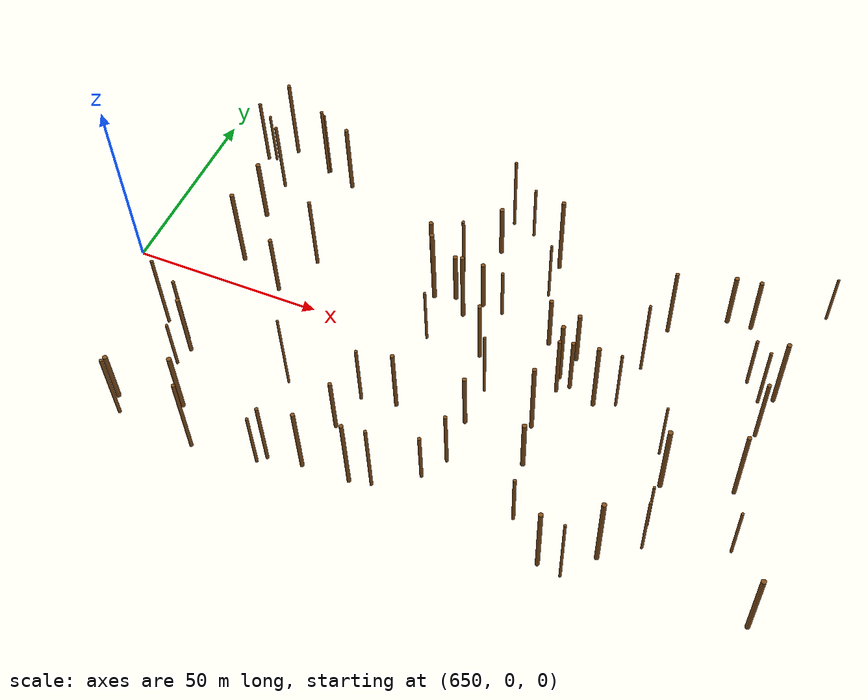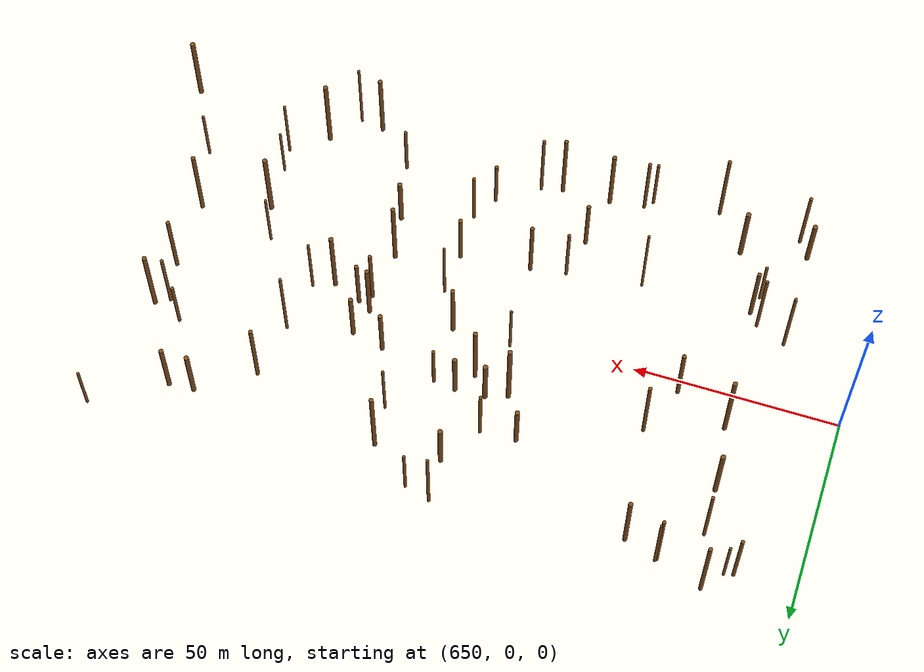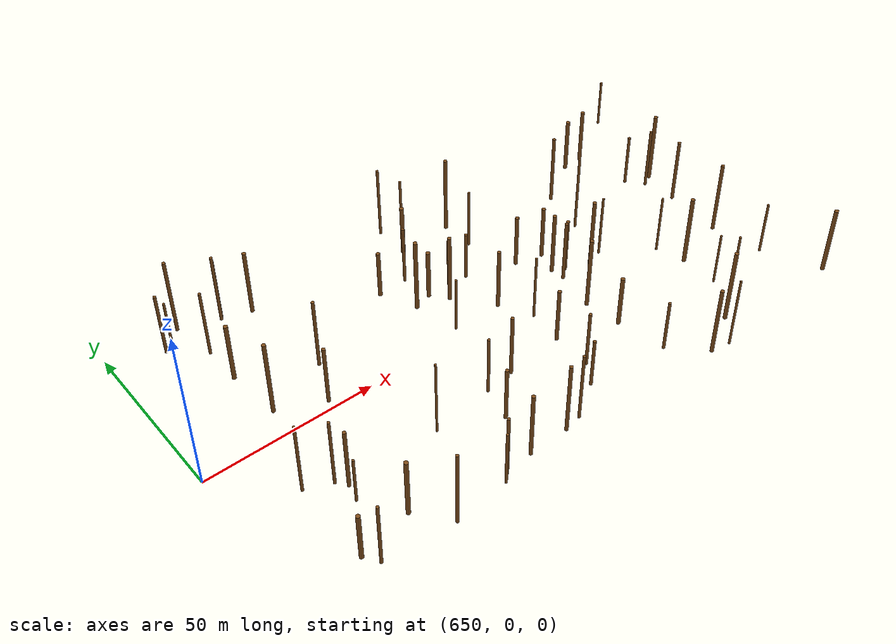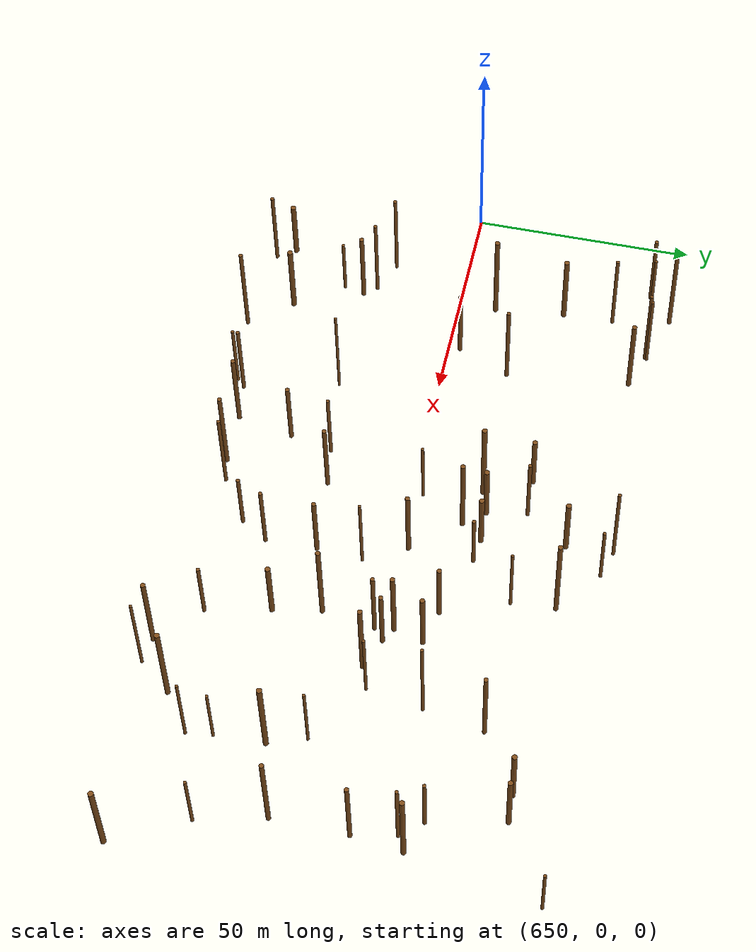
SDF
<sdf version="1.6">
 <world name="simple_forest">
  <include><uri>model://sun</uri></include>
  <model name="tree_1">
   <pose>739.1065020223723 17.669948742291126 7.934694163147081 0 0 0</pose>
   <static>true</static>
   <link name="trunk">
    <collision name="collision">
     <geometry>
      <cylinder><radius>0.5676538703114535</radius><length>15.869388326294162</length></cylinder>
     </geometry>
    </collision>
    <visual name="visual">
     <geometry>
      <cylinder><radius>0.5676538703114535</radius><length>15.869388326294162</length></cylinder>
     </geometry>
     <material><ambient>0.5 0.3 0.1 1</ambient><diffuse>0.5 0.3 0.1 1</diffuse></material>
    </visual>
   </link>
  </model>
  <model name="tree_5">
   <pose>807.7610593144798 19.81393949882269 8.277397499058909 0 0 0</pose>
   <static>true</static>
   <link name="trunk">
    <collision name="collision">
     <geometry>
      <cylinder><radius>0.40207515495539753</radius><length>16.554794998117817</length></cylinder>
     </geometry>
    </collision>
    <visual name="visual">
     <geometry>
      <cylinder><radius>0.40207515495539753</radius><length>16.554794998117817</length></cylinder>
     </geometry>
     <material><ambient>0.5 0.3 0.1 1</ambient><diffuse>0.5 0.3 0.1 1</diffuse></material>
    </visual>
   </link>
  </model>
  <model name="tree_10">
   <pose>707.5261178527743 -45.41756163443378 8.946939818010536 0 0 0</pose>
   <static>true</static>
   <link name="trunk">
    <collision name="collision">
     <geometry>
      <cylinder><radius>0.36836948269546405</radius><length>17.893879636021072</length></cylinder>
     </geometry>
    </collision>
    <visual name="visual">
     <geometry>
      <cylinder><radius>0.36836948269546405</radius><length>17.893879636021072</length></cylinder>
     </geometry>
     <material><ambient>0.5 0.3 0.1 1</ambient><diffuse>0.5 0.3 0.1 1</diffuse></material>
    </visual>
   </link>
  </model>
  <model name="tree_23">
   <pose>794.1585707193344 -7.784003320031594 9.408096432532684 0 0 0</pose>
   <static>true</static>
   <link name="trunk">
    <collision name="collision">
     <geometry>
      <cylinder><radius>0.31905831184558714</radius><length>18.816192865065368</length></cylinder>
     </geometry>
    </collision>
    <visual name="visual">
     <geometry>
      <cylinder><radius>0.31905831184558714</radius><length>18.816192865065368</length></cylinder>
     </geometry>
     <material><ambient>0.5 0.3 0.1 1</ambient><diffuse>0.5 0.3 0.1 1</diffuse></material>
    </visual>
   </link>
  </model>
  <model name="tree_30">
   <pose>764.8856920743998 3.9379030119625753 10.151768360975888 0 0 0</pose>
   <static>true</static>
   <link name="trunk">
    <collision name="collision">
     <geometry>
      <cylinder><radius>0.5335879435891675</radius><length>20.303536721951776</length></cylinder>
     </geometry>
    </collision>
    <visual name="visual">
     <geometry>
      <cylinder><radius>0.5335879435891675</radius><length>20.303536721951776</length></cylinder>
     </geometry>
     <material><ambient>0.5 0.3 0.1 1</ambient><diffuse>0.5 0.3 0.1 1</diffuse></material>
    </visual>
   </link>
  </model>
  <model name="tree_45">
   <pose>731.785090965252 17.336454729330157 7.992089355759794 0 0 0</pose>
   <static>true</static>
   <link name="trunk">
    <collision name="collision">
     <geometry>
      <cylinder><radius>0.5952495634097899</radius><length>15.984178711519588</length></cylinder>
     </geometry>
    </collision>
    <visual name="visual">
     <geometry>
      <cylinder><radius>0.5952495634097899</radius><length>15.984178711519588</length></cylinder>
     </geometry>
     <material><ambient>0.5 0.3 0.1 1</ambient><diffuse>0.5 0.3 0.1 1</diffuse></material>
    </visual>
   </link>
  </model>
  <model name="tree_62">
   <pose>674.9733207303716 -20.000292020123776 11.25932246207201 0 0 0</pose>
   <static>true</static>
   <link name="trunk">
    <collision name="collision">
     <geometry>
      <cylinder><radius>0.3948531588815562</radius><length>22.51864492414402</length></cylinder>
     </geometry>
    </collision>
    <visual name="visual">
     <geometry>
      <cylinder><radius>0.3948531588815562</radius><length>22.51864492414402</length></cylinder>
     </geometry>
     <material><ambient>0.5 0.3 0.1 1</ambient><diffuse>0.5 0.3 0.1 1</diffuse></material>
    </visual>
   </link>
  </model>
  <model name="tree_68">
   <pose>666.7548278164165 43.89300039271039 8.077143352095511 0 0 0</pose>
   <static>true</static>
   <link name="trunk">
    <collision name="collision">
     <geometry>
      <cylinder><radius>0.3402873343180103</radius><length>16.154286704191023</length></cylinder>
     </geometry>
    </collision>
    <visual name="visual">
     <geometry>
      <cylinder><radius>0.3402873343180103</radius><length>16.154286704191023</length></cylinder>
     </geometry>
     <material><ambient>0.5 0.3 0.1 1</ambient><diffuse>0.5 0.3 0.1 1</diffuse></material>
    </visual>
   </link>
  </model>
  <model name="tree_70">
   <pose>720.43606526741 -29.640268767254707 8.819919508152047 0 0 0</pose>
   <static>true</static>
   <link name="trunk">
    <collision name="collision">
     <geometry>
      <cylinder><radius>0.4902713876655239</radius><length>17.639839016304094</length></cylinder>
     </geometry>
    </collision>
    <visual name="visual">
     <geometry>
      <cylinder><radius>0.4902713876655239</radius><length>17.639839016304094</length></cylinder>
     </geometry>
     <material><ambient>0.5 0.3 0.1 1</ambient><diffuse>0.5 0.3 0.1 1</diffuse></material>
    </visual>
   </link>
  </model>
  <model name="tree_77">
   <pose>798.1610818391613 36.07025820009028 8.55038269169877 0 0 0</pose>
   <static>true</static>
   <link name="trunk">
    <collision name="collision">
     <geometry>
      <cylinder><radius>0.5696773909579423</radius><length>17.10076538339754</length></cylinder>
     </geometry>
    </collision>
    <visual name="visual">
     <geometry>
      <cylinder><radius>0.5696773909579423</radius><length>17.10076538339754</length></cylinder>
     </geometry>
     <material><ambient>0.5 0.3 0.1 1</ambient><diffuse>0.5 0.3 0.1 1</diffuse></material>
    </visual>
   </link>
  </model>
  <model name="tree_82">
   <pose>804.2127875477676 36.406402837527935 8.83402854797236 0 0 0</pose>
   <static>true</static>
   <link name="trunk">
    <collision name="collision">
     <geometry>
      <cylinder><radius>0.5432247949723167</radius><length>17.66805709594472</length></cylinder>
     </geometry>
    </collision>
    <visual name="visual">
     <geometry>
      <cylinder><radius>0.5432247949723167</radius><length>17.66805709594472</length></cylinder>
     </geometry>
     <material><ambient>0.5 0.3 0.1 1</ambient><diffuse>0.5 0.3 0.1 1</diffuse></material>
    </visual>
   </link>
  </model>
  <model name="tree_83">
   <pose>789.5007640441164 -39.19043735970429 11.792966256688908 0 0 0</pose>
   <static>true</static>
   <link name="trunk">
    <collision name="collision">
     <geometry>
      <cylinder><radius>0.561650034871827</radius><length>23.585932513377816</length></cylinder>
     </geometry>
    </collision>
    <visual name="visual">
     <geometry>
      <cylinder><radius>0.561650034871827</radius><length>23.585932513377816</length></cylinder>
     </geometry>
     <material><ambient>0.5 0.3 0.1 1</ambient><diffuse>0.5 0.3 0.1 1</diffuse></material>
    </visual>
   </link>
  </model>
  <model name="tree_85">
   <pose>797.3920441613332 -27.240451259222965 8.465648941638543 0 0 0</pose>
   <static>true</static>
   <link name="trunk">
    <collision name="collision">
     <geometry>
      <cylinder><radius>0.30709933041043547</radius><length>16.931297883277086</length></cylinder>
     </geometry>
    </collision>
    <visual name="visual">
     <geometry>
      <cylinder><radius>0.30709933041043547</radius><length>16.931297883277086</length></cylinder>
     </geometry>
     <material><ambient>0.5 0.3 0.1 1</ambient><diffuse>0.5 0.3 0.1 1</diffuse></material>
    </visual>
   </link>
  </model>
  <model name="tree_90">
   <pose>731.2596100461773 -18.632268580500877 10.05711529834739 0 0 0</pose>
   <static>true</static>
   <link name="trunk">
    <collision name="collision">
     <geometry>
      <cylinder><radius>0.48186265599184297</radius><length>20.11423059669478</length></cylinder>
     </geometry>
    </collision>
    <visual name="visual">
     <geometry>
      <cylinder><radius>0.48186265599184297</radius><length>20.11423059669478</length></cylinder>
     </geometry>
     <material><ambient>0.5 0.3 0.1 1</ambient><diffuse>0.5 0.3 0.1 1</diffuse></material>
    </visual>
   </link>
  </model>
  <model name="tree_93">
   <pose>744.5305770610818 17.06285044329995 7.849869055631551 0 0 0</pose>
   <static>true</static>
   <link name="trunk">
    <collision name="collision">
     <geometry>
      <cylinder><radius>0.40926644153437924</radius><length>15.699738111263102</length></cylinder>
     </geometry>
    </collision>
    <visual name="visual">
     <geometry>
      <cylinder><radius>0.40926644153437924</radius><length>15.699738111263102</length></cylinder>
     </geometry>
     <material><ambient>0.5 0.3 0.1 1</ambient><diffuse>0.5 0.3 0.1 1</diffuse></material>
    </visual>
   </link>
  </model>
  <model name="tree_94">
   <pose>667.5953080621596 -16.979996395740358 11.740076397531677 0 0 0</pose>
   <static>true</static>
   <link name="trunk">
    <collision name="collision">
     <geometry>
      <cylinder><radius>0.3941746935175079</radius><length>23.480152795063354</length></cylinder>
     </geometry>
    </collision>
    <visual name="visual">
     <geometry>
      <cylinder><radius>0.3941746935175079</radius><length>23.480152795063354</length></cylinder>
     </geometry>
     <material><ambient>0.5 0.3 0.1 1</ambient><diffuse>0.5 0.3 0.1 1</diffuse></material>
    </visual>
   </link>
  </model>
  <model name="tree_95">
   <pose>722.5567203838107 -19.967773178873582 9.541964543096084 0 0 0</pose>
   <static>true</static>
   <link name="trunk">
    <collision name="collision">
     <geometry>
      <cylinder><radius>0.392785398662596</radius><length>19.083929086192168</length></cylinder>
     </geometry>
    </collision>
    <visual name="visual">
     <geometry>
      <cylinder><radius>0.392785398662596</radius><length>19.083929086192168</length></cylinder>
     </geometry>
     <material><ambient>0.5 0.3 0.1 1</ambient><diffuse>0.5 0.3 0.1 1</diffuse></material>
    </visual>
   </link>
  </model>
  <model name="tree_101">
   <pose>798.0645125255124 -33.030860380194525 10.077260049576083 0 0 0</pose>
   <static>true</static>
   <link name="trunk">
    <collision name="collision">
     <geometry>
      <cylinder><radius>0.3254386610175365</radius><length>20.154520099152165</length></cylinder>
     </geometry>
    </collision>
    <visual name="visual">
     <geometry>
      <cylinder><radius>0.3254386610175365</radius><length>20.154520099152165</length></cylinder>
     </geometry>
     <material><ambient>0.5 0.3 0.1 1</ambient><diffuse>0.5 0.3 0.1 1</diffuse></material>
    </visual>
   </link>
  </model>
  <model name="tree_103">
   <pose>676.0677138515954 -27.535933400271173 7.622126938634132 0 0 0</pose>
   <static>true</static>
   <link name="trunk">
    <collision name="collision">
     <geometry>
      <cylinder><radius>0.359738979817973</radius><length>15.244253877268264</length></cylinder>
     </geometry>
    </collision>
    <visual name="visual">
     <geometry>
      <cylinder><radius>0.359738979817973</radius><length>15.244253877268264</length></cylinder>
     </geometry>
     <material><ambient>0.5 0.3 0.1 1</ambient><diffuse>0.5 0.3 0.1 1</diffuse></material>
    </visual>
   </link>
  </model>
  <model name="tree_107">
   <pose>753.4548318522882 27.004618857402505 9.62573096971367 0 0 0</pose>
   <static>true</static>
   <link name="trunk">
    <collision name="collision">
     <geometry>
      <cylinder><radius>0.33197618896906167</radius><length>19.25146193942734</length></cylinder>
     </geometry>
    </collision>
    <visual name="visual">
     <geometry>
      <cylinder><radius>0.33197618896906167</radius><length>19.25146193942734</length></cylinder>
     </geometry>
     <material><ambient>0.5 0.3 0.1 1</ambient><diffuse>0.5 0.3 0.1 1</diffuse></material>
    </visual>
   </link>
  </model>
  <model name="tree_110">
   <pose>670.9019552604896 48.7892453066448 12.250198042215779 0 0 0</pose>
   <static>true</static>
   <link name="trunk">
    <collision name="collision">
     <geometry>
      <cylinder><radius>0.47863569554082586</radius><length>24.500396084431557</length></cylinder>
     </geometry>
    </collision>
    <visual name="visual">
     <geometry>
      <cylinder><radius>0.47863569554082586</radius><length>24.500396084431557</length></cylinder>
     </geometry>
     <material><ambient>0.5 0.3 0.1 1</ambient><diffuse>0.5 0.3 0.1 1</diffuse></material>
    </visual>
   </link>
  </model>
  <model name="tree_114">
   <pose>768.1555474541938 2.1299812827982123 8.872987234587692 0 0 0</pose>
   <static>true</static>
   <link name="trunk">
    <collision name="collision">
     <geometry>
      <cylinder><radius>0.48802453109453436</radius><length>17.745974469175383</length></cylinder>
     </geometry>
    </collision>
    <visual name="visual">
     <geometry>
      <cylinder><radius>0.48802453109453436</radius><length>17.745974469175383</length></cylinder>
     </geometry>
     <material><ambient>0.5 0.3 0.1 1</ambient><diffuse>0.5 0.3 0.1 1</diffuse></material>
    </visual>
   </link>
  </model>
  <model name="tree_117">
   <pose>709.3549502776067 -43.57711492861219 10.213055702519576 0 0 0</pose>
   <static>true</static>
   <link name="trunk">
    <collision name="collision">
     <geometry><cylinder><radius>0.422279810899976</radius><length>20.42611140503915</length></cylinder></geometry>
    </collision>
    <visual name="visual">
     <geometry><cylinder><radius>0.422279810899976</radius><length>20.42611140503915</length></cylinder></geometry>
     <material><ambient>0.5 0.3 0.1 1</ambient><diffuse>0.5 0.3 0.1 1</diffuse></material>
    </visual>
   </link>
  </model>
  <model name="tree_128">
   <pose>763.6174108150868 -12.087378443586374 11.659621425776363 0 0 0</pose>
   <static>true</static>
   <link name="trunk">
    <collision name="collision">
     <geometry>
      <cylinder><radius>0.5256029470664354</radius><length>23.319242851552726</length></cylinder>
     </geometry>
    </collision>
    <visual name="visual">
     <geometry>
      <cylinder><radius>0.5256029470664354</radius><length>23.319242851552726</length></cylinder>
     </geometry>
     <material><ambient>0.5 0.3 0.1 1</ambient><diffuse>0.5 0.3 0.1 1</diffuse></material>
    </visual>
   </link>
  </model>
  <model name="tree_135">
   <pose>821.1081625679742 46.47207730340877 7.62839212748733 0 0 0</pose>
   <static>true</static>
   <link name="trunk">
    <collision name="collision">
     <geometry>
      <cylinder><radius>0.33242962489728195</radius><length>15.25678425497466</length></cylinder>
     </geometry>
    </collision>
    <visual name="visual">
     <geometry>
      <cylinder><radius>0.33242962489728195</radius><length>15.25678425497466</length></cylinder>
     </geometry>
     <material><ambient>0.5 0.3 0.1 1</ambient><diffuse>0.5 0.3 0.1 1</diffuse></material>
    </visual>
   </link>
  </model>
  <model name="tree_137">
   <pose>717.8645579989737 -42.40035221569401 10.636211978005221 0 0 0</pose>
   <static>true</static>
   <link name="trunk">
    <collision name="collision">
     <geometry>
      <cylinder><radius>0.5071843247798941</radius><length>21.272423956010442</length></cylinder>
     </geometry>
    </collision>
    <visual name="visual">
     <geometry>
      <cylinder><radius>0.5071843247798941</radius><length>21.272423956010442</length></cylinder>
     </geometry>
     <material><ambient>0.5 0.3 0.1 1</ambient><diffuse>0.5 0.3 0.1 1</diffuse></material>
    </visual>
   </link>
  </model>
  <model name="tree_143">
   <pose>736.4573509732579 46.54737312380777 11.54099609403378 0 0 0</pose>
   <static>true</static>
   <link name="trunk">
    <collision name="collision">
     <geometry>
      <cylinder><radius>0.38102471891622025</radius><length>23.08199218806756</length></cylinder>
     </geometry>
    </collision>
    <visual name="visual">
     <geometry>
      <cylinder><radius>0.38102471891622025</radius><length>23.08199218806756</length></cylinder>
     </geometry>
     <material><ambient>0.5 0.3 0.1 1</ambient><diffuse>0.5 0.3 0.1 1</diffuse></material>
    </visual>
   </link>
  </model>
  <model name="tree_149">
   <pose>704.1719128288796 -22.37314242438151 12.240312888885157 0 0 0</pose>
   <static>true</static>
   <link name="trunk">
    <collision name="collision">
     <geometry>
      <cylinder><radius>0.30304533433160313</radius><length>24.480625777770314</length></cylinder>
     </geometry>
    </collision>
    <visual name="visual">
     <geometry>
      <cylinder><radius>0.30304533433160313</radius><length>24.480625777770314</length></cylinder>
     </geometry>
     <material><ambient>0.5 0.3 0.1 1</ambient><diffuse>0.5 0.3 0.1 1</diffuse></material>
    </visual>
   </link>
  </model>
  <model name="tree_151">
   <pose>693.7032460520578 14.590289974095228 11.464664340661587 0 0 0</pose>
   <static>true</static>
   <link name="trunk">
    <collision name="collision">
     <geometry>
      <cylinder><radius>0.44724640052357584</radius><length>22.929328681323174</length></cylinder>
     </geometry>
    </collision>
    <visual name="visual">
     <geometry>
      <cylinder><radius>0.44724640052357584</radius><length>22.929328681323174</length></cylinder>
     </geometry>
     <material><ambient>0.5 0.3 0.1 1</ambient><diffuse>0.5 0.3 0.1 1</diffuse></material>
    </visual>
   </link>
  </model>
  <model name="tree_154">
   <pose>748.4760823464735 -16.920870280406987 8.854582134880982 0 0 0</pose>
   <static>true</static>
   <link name="trunk">
    <collision name="collision">
     <geometry>
      <cylinder><radius>0.5108564826557307</radius><length>17.709164269761963</length></cylinder>
     </geometry>
    </collision>
    <visual name="visual">
     <geometry>
      <cylinder><radius>0.5108564826557307</radius><length>17.709164269761963</length></cylinder>
     </geometry>
     <material><ambient>0.5 0.3 0.1 1</ambient><diffuse>0.5 0.3 0.1 1</diffuse></material>
    </visual>
   </link>
  </model>
  <model name="tree_166">
   <pose>766.7990108729323 10.63176512429628 8.628435685325172 0 0 0</pose>
   <static>true</static>
   <link name="trunk">
    <collision name="collision">
     <geometry>
      <cylinder><radius>0.5372222489530258</radius><length>17.256871370650344</length></cylinder>
     </geometry>
    </collision>
    <visual name="visual">
     <geometry>
      <cylinder><radius>0.5372222489530258</radius><length>17.256871370650344</length></cylinder>
     </geometry>
     <material><ambient>0.5 0.3 0.1 1</ambient><diffuse>0.5 0.3 0.1 1</diffuse></material>
    </visual>
   </link>
  </model>
  <model name="tree_169">
   <pose>742.6884124296995 44.759020032537805 8.555125976526964 0 0 0</pose>
   <static>true</static>
   <link name="trunk">
    <collision name="collision">
     <geometry>
      <cylinder><radius>0.3623363717470654</radius><length>17.11025195305393</length></cylinder>
     </geometry>
    </collision>
    <visual name="visual">
     <geometry>
      <cylinder><radius>0.3623363717470654</radius><length>17.11025195305393</length></cylinder>
     </geometry>
     <material><ambient>0.5 0.3 0.1 1</ambient><diffuse>0.5 0.3 0.1 1</diffuse></material>
    </visual>
   </link>
  </model>
  <model name="tree_173">
   <pose>690.5110708705303 42.391104448254865 10.62529003582111 0 0 0</pose>
   <static>true</static>
   <link name="trunk">
    <collision name="collision">
     <geometry>
      <cylinder><radius>0.5363484079940194</radius><length>21.25058007164222</length></cylinder>
     </geometry>
    </collision>
    <visual name="visual">
     <geometry>
      <cylinder><radius>0.5363484079940194</radius><length>21.25058007164222</length></cylinder>
     </geometry>
     <material><ambient>0.5 0.3 0.1 1</ambient><diffuse>0.5 0.3 0.1 1</diffuse></material>
    </visual>
   </link>
  </model>
  <model name="tree_174">
   <pose>664.5712124248341 43.36684584455132 10.222811893552894 0 0 0</pose>
   <static>true</static>
   <link name="trunk">
    <collision name="collision">
     <geometry>
      <cylinder><radius>0.4275416898312635</radius><length>20.445623787105788</length></cylinder>
     </geometry>
    </collision>
    <visual name="visual">
     <geometry>
      <cylinder><radius>0.4275416898312635</radius><length>20.445623787105788</length></cylinder>
     </geometry>
     <material><ambient>0.5 0.3 0.1 1</ambient><diffuse>0.5 0.3 0.1 1</diffuse></material>
    </visual>
   </link>
  </model>
  <model name="tree_185">
   <pose>673.4321744259736 35.77330944003526 10.968368369917162 0 0 0</pose>
   <static>true</static>
   <link name="trunk">
    <collision name="collision">
     <geometry>
      <cylinder><radius>0.3989410990736896</radius><length>21.936736739834323</length></cylinder>
     </geometry>
    </collision>
    <visual name="visual">
     <geometry>
      <cylinder><radius>0.3989410990736896</radius><length>21.936736739834323</length></cylinder>
     </geometry>
     <material><ambient>0.5 0.3 0.1 1</ambient><diffuse>0.5 0.3 0.1 1</diffuse></material>
    </visual>
   </link>
  </model>
  <model name="tree_190">
   <pose>758.878722515018 12.540874214500896 8.51779119175137 0 0 0</pose>
   <static>true</static>
   <link name="trunk">
    <collision name="collision">
     <geometry>
      <cylinder><radius>0.5279971608183051</radius><length>17.03558238350274</length></cylinder>
     </geometry>
    </collision>
    <visual name="visual">
     <geometry>
      <cylinder><radius>0.5279971608183051</radius><length>17.03558238350274</length></cylinder>
     </geometry>
     <material><ambient>0.5 0.3 0.1 1</ambient><diffuse>0.5 0.3 0.1 1</diffuse></material>
    </visual>
   </link>
  </model>
  <model name="tree_204">
   <pose>777.7890303482662 -45.635270090269806 11.026139405125013 0 0 0</pose>
   <static>true</static>
   <link name="trunk">
    <collision name="collision">
     <geometry>
      <cylinder><radius>0.5234115454695587</radius><length>22.052278810250026</length></cylinder>
     </geometry>
    </collision>
    <visual name="visual">
     <geometry>
      <cylinder><radius>0.5234115454695587</radius><length>22.052278810250026</length></cylinder>
     </geometry>
     <material><ambient>0.5 0.3 0.1 1</ambient><diffuse>0.5 0.3 0.1 1</diffuse></material>
    </visual>
   </link>
  </model>
  <model name="tree_205">
   <pose>813.2948135392281 -11.392124750901765 11.603737758547776 0 0 0</pose>
   <static>true</static>
   <link name="trunk">
    <collision name="collision">
     <geometry>
      <cylinder><radius>0.4991066488453604</radius><length>23.207475517095553</length></cylinder>
     </geometry>
    </collision>
    <visual name="visual">
     <geometry>
      <cylinder><radius>0.4991066488453604</radius><length>23.207475517095553</length></cylinder>
     </geometry>
     <material><ambient>0.5 0.3 0.1 1</ambient><diffuse>0.5 0.3 0.1 1</diffuse></material>
    </visual>
   </link>
  </model>
  <model name="tree_212">
   <pose>721.5302509707532 25.940180933436366 7.679495499188433 0 0 0</pose>
   <static>true</static>
   <link name="trunk">
    <collision name="collision">
     <geometry>
      <cylinder><radius>0.5617149052195609</radius><length>15.358990998376866</length></cylinder>
     </geometry>
    </collision>
    <visual name="visual">
     <geometry>
      <cylinder><radius>0.5617149052195609</radius><length>15.358990998376866</length></cylinder>
     </geometry>
     <material><ambient>0.5 0.3 0.1 1</ambient><diffuse>0.5 0.3 0.1 1</diffuse></material>
    </visual>
   </link>
  </model>
  <model name="tree_214">
   <pose>749.2987030705477 -6.602852807687434 10.668739143903956 0 0 0</pose>
   <static>true</static>
   <link name="trunk">
    <collision name="collision">
     <geometry>
      <cylinder><radius>0.32953293791495936</radius><length>21.33747828780791</length></cylinder>
     </geometry>
    </collision>
    <visual name="visual">
     <geometry>
      <cylinder><radius>0.32953293791495936</radius><length>21.33747828780791</length></cylinder>
     </geometry>
     <material><ambient>0.5 0.3 0.1 1</ambient><diffuse>0.5 0.3 0.1 1</diffuse></material>
    </visual>
   </link>
  </model>
  <model name="tree_232">
   <pose>735.0361702598459 -40.98666242537811 11.237404324691857 0 0 0</pose>
   <static>true</static>
   <link name="trunk">
    <collision name="collision">
     <geometry>
      <cylinder><radius>0.3885331354887466</radius><length>22.474808649383714</length></cylinder>
     </geometry>
    </collision>
    <visual name="visual">
     <geometry>
      <cylinder><radius>0.3885331354887466</radius><length>22.474808649383714</length></cylinder>
     </geometry>
     <material><ambient>0.5 0.3 0.1 1</ambient><diffuse>0.5 0.3 0.1 1</diffuse></material>
    </visual>
   </link>
  </model>
  <model name="tree_240">
   <pose>675.6173893775031 8.456009165216607 12.201459458897771 0 0 0</pose>
   <static>true</static>
   <link name="trunk">
    <collision name="collision">
     <geometry>
      <cylinder><radius>0.5467251903680322</radius><length>24.402918917795542</length></cylinder>
     </geometry>
    </collision>
    <visual name="visual">
     <geometry>
      <cylinder><radius>0.5467251903680322</radius><length>24.402918917795542</length></cylinder>
     </geometry>
     <material><ambient>0.5 0.3 0.1 1</ambient><diffuse>0.5 0.3 0.1 1</diffuse></material>
    </visual>
   </link>
  </model>
  <model name="tree_246">
   <pose>673.7813566616695 24.31401215231716 9.595633767073615 0 0 0</pose>
   <static>true</static>
   <link name="trunk">
    <collision name="collision">
     <geometry>
      <cylinder><radius>0.5837922257338296</radius><length>19.19126753414723</length></cylinder>
     </geometry>
    </collision>
    <visual name="visual">
     <geometry>
      <cylinder><radius>0.5837922257338296</radius><length>19.19126753414723</length></cylinder>
     </geometry>
     <material><ambient>0.5 0.3 0.1 1</ambient><diffuse>0.5 0.3 0.1 1</diffuse></material>
    </visual>
   </link>
  </model>
  <model name="tree_247">
   <pose>744.8463246176626 -34.5477097590165 7.995108173552643 0 0 0</pose>
   <static>true</static>
   <link name="trunk">
    <collision name="collision">
     <geometry>
      <cylinder><radius>0.42446535823104203</radius><length>15.990216347105285</length></cylinder>
     </geometry>
    </collision>
    <visual name="visual">
     <geometry>
      <cylinder><radius>0.42446535823104203</radius><length>15.990216347105285</length></cylinder>
     </geometry>
     <material><ambient>0.5 0.3 0.1 1</ambient><diffuse>0.5 0.3 0.1 1</diffuse></material>
    </visual>
   </link>
  </model>
  <model name="tree_260">
   <pose>744.300876384608 2.60855265978671 9.88122982711625 0 0 0</pose>
   <static>true</static>
   <link name="trunk">
    <collision name="collision">
     <geometry><cylinder><radius>0.5236995825101987</radius><length>19.7624596542325</length></cylinder></geometry>
    </collision>
    <visual name="visual">
     <geometry><cylinder><radius>0.5236995825101987</radius><length>19.7624596542325</length></cylinder></geometry>
     <material><ambient>0.5 0.3 0.1 1</ambient><diffuse>0.5 0.3 0.1 1</diffuse></material>
    </visual>
   </link>
  </model>
  <model name="tree_261">
   <pose>780.2368689210607 1.3237957609191682 10.019193448929107 0 0 0</pose>
   <static>true</static>
   <link name="trunk">
    <collision name="collision">
     <geometry>
      <cylinder><radius>0.3327162030011536</radius><length>20.038386897858214</length></cylinder>
     </geometry>
    </collision>
    <visual name="visual">
     <geometry>
      <cylinder><radius>0.3327162030011536</radius><length>20.038386897858214</length></cylinder>
     </geometry>
     <material><ambient>0.5 0.3 0.1 1</ambient><diffuse>0.5 0.3 0.1 1</diffuse></material>
    </visual>
   </link>
  </model>
  <model name="tree_274">
   <pose>813.6515924246185 5.637073561535011 10.307932069960362 0 0 0</pose>
   <static>true</static>
   <link name="trunk">
    <collision name="collision">
     <geometry>
      <cylinder><radius>0.4759395248218431</radius><length>20.615864139920724</length></cylinder>
     </geometry>
    </collision>
    <visual name="visual">
     <geometry>
      <cylinder><radius>0.4759395248218431</radius><length>20.615864139920724</length></cylinder>
     </geometry>
     <material><ambient>0.5 0.3 0.1 1</ambient><diffuse>0.5 0.3 0.1 1</diffuse></material>
    </visual>
   </link>
  </model>
  <model name="tree_276">
   <pose>752.7814077489635 36.80921488690649 12.341993126557373 0 0 0</pose>
   <static>true</static>
   <link name="trunk">
    <collision name="collision">
     <geometry>
      <cylinder><radius>0.5163182036238448</radius><length>24.683986253114746</length></cylinder>
     </geometry>
    </collision>
    <visual name="visual">
     <geometry>
      <cylinder><radius>0.5163182036238448</radius><length>24.683986253114746</length></cylinder>
     </geometry>
     <material><ambient>0.5 0.3 0.1 1</ambient><diffuse>0.5 0.3 0.1 1</diffuse></material>
    </visual>
   </link>
  </model>
  <model name="tree_285">
   <pose>748.6506443856497 -28.486711996648907 9.204479908846665 0 0 0</pose>
   <static>true</static>
   <link name="trunk">
    <collision name="collision">
     <geometry>
      <cylinder><radius>0.42594974812935094</radius><length>18.40895981769333</length></cylinder>
     </geometry>
    </collision>
    <visual name="visual">
     <geometry>
      <cylinder><radius>0.42594974812935094</radius><length>18.40895981769333</length></cylinder>
     </geometry>
     <material><ambient>0.5 0.3 0.1 1</ambient><diffuse>0.5 0.3 0.1 1</diffuse></material>
    </visual>
   </link>
  </model>
  <model name="tree_288">
   <pose>677.2290235069819 -22.789715645378106 9.92830852445498 0 0 0</pose>
   <static>true</static>
   <link name="trunk">
    <collision name="collision">
     <geometry>
      <cylinder><radius>0.49858160784247835</radius><length>19.85661704890996</length></cylinder>
     </geometry>
    </collision>
    <visual name="visual">
     <geometry>
      <cylinder><radius>0.49858160784247835</radius><length>19.85661704890996</length></cylinder>
     </geometry>
     <material><ambient>0.5 0.3 0.1 1</ambient><diffuse>0.5 0.3 0.1 1</diffuse></material>
    </visual>
   </link>
  </model>
  <model name="tree_291">
   <pose>670.4612331489861 -45.458263739557246 10.496624784722252 0 0 0</pose>
   <static>true</static>
   <link name="trunk">
    <collision name="collision">
     <geometry>
      <cylinder><radius>0.4185790188262887</radius><length>20.993249569444504</length></cylinder>
     </geometry>
    </collision>
    <visual name="visual">
     <geometry>
      <cylinder><radius>0.4185790188262887</radius><length>20.993249569444504</length></cylinder>
     </geometry>
     <material><ambient>0.5 0.3 0.1 1</ambient><diffuse>0.5 0.3 0.1 1</diffuse></material>
    </visual>
   </link>
  </model>
  <model name="tree_304">
   <pose>816.886635692514 -26.37311510532757 8.486359014119916 0 0 0</pose>
   <static>true</static>
   <link name="trunk">
    <collision name="collision">
     <geometry>
      <cylinder><radius>0.3439332654833083</radius><length>16.972718028239832</length></cylinder>
     </geometry>
    </collision>
    <visual name="visual">
     <geometry>
      <cylinder><radius>0.3439332654833083</radius><length>16.972718028239832</length></cylinder>
     </geometry>
     <material><ambient>0.5 0.3 0.1 1</ambient><diffuse>0.5 0.3 0.1 1</diffuse></material>
    </visual>
   </link>
  </model>
  <model name="tree_306">
   <pose>775.1196083550847 -0.5882974982611344 11.299385748038741 0 0 0</pose>
   <static>true</static>
   <link name="trunk">
    <collision name="collision">
     <geometry>
      <cylinder><radius>0.5263337475740957</radius><length>22.598771496077482</length></cylinder>
     </geometry>
    </collision>
    <visual name="visual">
     <geometry>
      <cylinder><radius>0.5263337475740957</radius><length>22.598771496077482</length></cylinder>
     </geometry>
     <material><ambient>0.5 0.3 0.1 1</ambient><diffuse>0.5 0.3 0.1 1</diffuse></material>
    </visual>
   </link>
  </model>
  <model name="tree_314">
   <pose>811.7177585209914 15.18374546486099 9.878145139715347 0 0 0</pose>
   <static>true</static>
   <link name="trunk">
    <collision name="collision">
     <geometry>
      <cylinder><radius>0.3964580288641285</radius><length>19.756290279430694</length></cylinder>
     </geometry>
    </collision>
    <visual name="visual">
     <geometry>
      <cylinder><radius>0.3964580288641285</radius><length>19.756290279430694</length></cylinder>
     </geometry>
     <material><ambient>0.5 0.3 0.1 1</ambient><diffuse>0.5 0.3 0.1 1</diffuse></material>
    </visual>
   </link>
  </model>
  <model name="tree_321">
   <pose>726.4963184524372 15.65640864104779 11.866398310302694 0 0 0</pose>
   <static>true</static>
   <link name="trunk">
    <collision name="collision">
     <geometry>
      <cylinder><radius>0.5719028091491032</radius><length>23.732796620605388</length></cylinder>
     </geometry>
    </collision>
    <visual name="visual">
     <geometry>
      <cylinder><radius>0.5719028091491032</radius><length>23.732796620605388</length></cylinder>
     </geometry>
     <material><ambient>0.5 0.3 0.1 1</ambient><diffuse>0.5 0.3 0.1 1</diffuse></material>
    </visual>
   </link>
  </model>
  <model name="tree_325">
   <pose>815.052935976653 17.01163999947225 11.193873360647414 0 0 0</pose>
   <static>true</static>
   <link name="trunk">
    <collision name="collision">
     <geometry>
      <cylinder><radius>0.5486876918683393</radius><length>22.38774672129483</length></cylinder>
     </geometry>
    </collision>
    <visual name="visual">
     <geometry>
      <cylinder><radius>0.5486876918683393</radius><length>22.38774672129483</length></cylinder>
     </geometry>
     <material><ambient>0.5 0.3 0.1 1</ambient><diffuse>0.5 0.3 0.1 1</diffuse></material>
    </visual>
   </link>
  </model>
  <model name="tree_326">
   <pose>688.5602958748005 2.6393339734174006 9.617031831610518 0 0 0</pose>
   <static>true</static>
   <link name="trunk">
    <collision name="collision">
     <geometry>
      <cylinder><radius>0.49380744622004635</radius><length>19.234063663221036</length></cylinder>
     </geometry>
    </collision>
    <visual name="visual">
     <geometry>
      <cylinder><radius>0.49380744622004635</radius><length>19.234063663221036</length></cylinder>
     </geometry>
     <material><ambient>0.5 0.3 0.1 1</ambient><diffuse>0.5 0.3 0.1 1</diffuse></material>
    </visual>
   </link>
  </model>
  <model name="tree_331">
   <pose>768.6445284027691 -36.8950958570492 8.311236060442253 0 0 0</pose>
   <static>true</static>
   <link name="trunk">
    <collision name="collision">
     <geometry>
      <cylinder><radius>0.4130159612467574</radius><length>16.622472120884506</length></cylinder>
     </geometry>
    </collision>
    <visual name="visual">
     <geometry>
      <cylinder><radius>0.4130159612467574</radius><length>16.622472120884506</length></cylinder>
     </geometry>
     <material><ambient>0.5 0.3 0.1 1</ambient><diffuse>0.5 0.3 0.1 1</diffuse></material>
    </visual>
   </link>
  </model>
  <model name="tree_341">
   <pose>765.4856619887739 -22.720870040864337 8.236743279958022 0 0 0</pose>
   <static>true</static>
   <link name="trunk">
    <collision name="collision">
     <geometry>
      <cylinder><radius>0.5715918626934724</radius><length>16.473486559916044</length></cylinder>
     </geometry>
    </collision>
    <visual name="visual">
     <geometry>
      <cylinder><radius>0.5715918626934724</radius><length>16.473486559916044</length></cylinder>
     </geometry>
     <material><ambient>0.5 0.3 0.1 1</ambient><diffuse>0.5 0.3 0.1 1</diffuse></material>
    </visual>
   </link>
  </model>
  <model name="tree_349">
   <pose>729.9624374716825 2.777150588672427 8.940507890196152 0 0 0</pose>
   <static>true</static>
   <link name="trunk">
    <collision name="collision">
     <geometry>
      <cylinder><radius>0.33335605809727153</radius><length>17.881015780392303</length></cylinder>
     </geometry>
    </collision>
    <visual name="visual">
     <geometry>
      <cylinder><radius>0.33335605809727153</radius><length>17.881015780392303</length></cylinder>
     </geometry>
     <material><ambient>0.5 0.3 0.1 1</ambient><diffuse>0.5 0.3 0.1 1</diffuse></material>
    </visual>
   </link>
  </model>
  <model name="tree_354">
   <pose>667.727588724589 -41.43860450127382 7.83839661454423 0 0 0</pose>
   <static>true</static>
   <link name="trunk">
    <collision name="collision">
     <geometry>
      <cylinder><radius>0.5923963472856665</radius><length>15.67679322908846</length></cylinder>
     </geometry>
    </collision>
    <visual name="visual">
     <geometry>
      <cylinder><radius>0.5923963472856665</radius><length>15.67679322908846</length></cylinder>
     </geometry>
     <material><ambient>0.5 0.3 0.1 1</ambient><diffuse>0.5 0.3 0.1 1</diffuse></material>
    </visual>
   </link>
  </model>
  <model name="tree_358">
   <pose>735.6116112361352 12.825696247565645 11.175934924061556 0 0 0</pose>
   <static>true</static>
   <link name="trunk">
    <collision name="collision">
     <geometry>
      <cylinder><radius>0.5314504122329577</radius><length>22.351869848123112</length></cylinder>
     </geometry>
    </collision>
    <visual name="visual">
     <geometry>
      <cylinder><radius>0.5314504122329577</radius><length>22.351869848123112</length></cylinder>
     </geometry>
     <material><ambient>0.5 0.3 0.1 1</ambient><diffuse>0.5 0.3 0.1 1</diffuse></material>
    </visual>
   </link>
  </model>
  <model name="tree_369">
   <pose>729.8105110992094 -42.107299394453214 11.611706397699432 0 0 0</pose>
   <static>true</static>
   <link name="trunk">
    <collision name="collision">
     <geometry>
      <cylinder><radius>0.48073598964906816</radius><length>23.223412795398865</length></cylinder>
     </geometry>
    </collision>
    <visual name="visual">
     <geometry>
      <cylinder><radius>0.48073598964906816</radius><length>23.223412795398865</length></cylinder>
     </geometry>
     <material><ambient>0.5 0.3 0.1 1</ambient><diffuse>0.5 0.3 0.1 1</diffuse></material>
    </visual>
   </link>
  </model>
  <model name="tree_375">
   <pose>682.616501736543 45.27893962796078 10.537864516604277 0 0 0</pose>
   <static>true</static>
   <link name="trunk">
    <collision name="collision">
     <geometry>
      <cylinder><radius>0.3428338405087649</radius><length>21.075729033208553</length></cylinder>
     </geometry>
    </collision>
    <visual name="visual">
     <geometry>
      <cylinder><radius>0.3428338405087649</radius><length>21.075729033208553</length></cylinder>
     </geometry>
     <material><ambient>0.5 0.3 0.1 1</ambient><diffuse>0.5 0.3 0.1 1</diffuse></material>
    </visual>
   </link>
  </model>
  <model name="tree_376">
   <pose>783.4988500460319 -46.520103420145794 11.392576867534327 0 0 0</pose>
   <static>true</static>
   <link name="trunk">
    <collision name="collision">
     <geometry>
      <cylinder><radius>0.3201700089186326</radius><length>22.785153735068654</length></cylinder>
     </geometry>
    </collision>
    <visual name="visual">
     <geometry>
      <cylinder><radius>0.3201700089186326</radius><length>22.785153735068654</length></cylinder>
     </geometry>
     <material><ambient>0.5 0.3 0.1 1</ambient><diffuse>0.5 0.3 0.1 1</diffuse></material>
    </visual>
   </link>
  </model>
  <model name="tree_378">
   <pose>682.271436344261 44.88235292655564 11.315422358992898 0 0 0</pose>
   <static>true</static>
   <link name="trunk">
    <collision name="collision">
     <geometry>
      <cylinder><radius>0.4116040135412051</radius><length>22.630844717985795</length></cylinder>
     </geometry>
    </collision>
    <visual name="visual">
     <geometry>
      <cylinder><radius>0.4116040135412051</radius><length>22.630844717985795</length></cylinder>
     </geometry>
     <material><ambient>0.5 0.3 0.1 1</ambient><diffuse>0.5 0.3 0.1 1</diffuse></material>
    </visual>
   </link>
  </model>
  <model name="tree_392">
   <pose>825.1060055133067 -42.6249287088761 10.711692946931906 0 0 0</pose>
   <static>true</static>
   <link name="trunk">
    <collision name="collision">
     <geometry>
      <cylinder><radius>0.5917139194541298</radius><length>21.423385893863813</length></cylinder>
     </geometry>
    </collision>
    <visual name="visual">
     <geometry>
      <cylinder><radius>0.5917139194541298</radius><length>21.423385893863813</length></cylinder>
     </geometry>
     <material><ambient>0.5 0.3 0.1 1</ambient><diffuse>0.5 0.3 0.1 1</diffuse></material>
    </visual>
   </link>
  </model>
  <model name="tree_394">
   <pose>782.4602995499253 13.9793929366663 12.331323069670534 0 0 0</pose>
   <static>true</static>
   <link name="trunk">
    <collision name="collision">
     <geometry>
      <cylinder><radius>0.3545889409656412</radius><length>24.662646139341067</length></cylinder>
     </geometry>
    </collision>
    <visual name="visual">
     <geometry>
      <cylinder><radius>0.3545889409656412</radius><length>24.662646139341067</length></cylinder>
     </geometry>
     <material><ambient>0.5 0.3 0.1 1</ambient><diffuse>0.5 0.3 0.1 1</diffuse></material>
    </visual>
   </link>
  </model>
  <model name="tree_408">
   <pose>736.8577572565014 36.077736575432525 8.153830757761932 0 0 0</pose>
   <static>true</static>
   <link name="trunk">
    <collision name="collision">
     <geometry>
      <cylinder><radius>0.5926122383744641</radius><length>16.307661515523865</length></cylinder>
     </geometry>
    </collision>
    <visual name="visual">
     <geometry>
      <cylinder><radius>0.5926122383744641</radius><length>16.307661515523865</length></cylinder>
     </geometry>
     <material><ambient>0.5 0.3 0.1 1</ambient><diffuse>0.5 0.3 0.1 1</diffuse></material>
    </visual>
   </link>
  </model>
  <model name="tree_413">
   <pose>765.4901613872422 -0.17344579400911897 9.993798541988271 0 0 0</pose>
   <static>true</static>
   <link name="trunk">
    <collision name="collision">
     <geometry>
      <cylinder><radius>0.45441745176944537</radius><length>19.987597083976542</length></cylinder>
     </geometry>
    </collision>
    <visual name="visual">
     <geometry>
      <cylinder><radius>0.45441745176944537</radius><length>19.987597083976542</length></cylinder>
     </geometry>
     <material><ambient>0.5 0.3 0.1 1</ambient><diffuse>0.5 0.3 0.1 1</diffuse></material>
    </visual>
   </link>
  </model>
  <model name="tree_418">
   <pose>730.232982725798 26.38567641619896 9.502908105073782 0 0 0</pose>
   <static>true</static>
   <link name="trunk">
    <collision name="collision">
     <geometry>
      <cylinder><radius>0.4097812057552689</radius><length>19.005816210147565</length></cylinder>
     </geometry>
    </collision>
    <visual name="visual">
     <geometry>
      <cylinder><radius>0.4097812057552689</radius><length>19.005816210147565</length></cylinder>
     </geometry>
     <material><ambient>0.5 0.3 0.1 1</ambient><diffuse>0.5 0.3 0.1 1</diffuse></material>
    </visual>
   </link>
  </model>
  <model name="tree_421">
   <pose>683.5946537176721 -38.118898027641045 9.469518563643035 0 0 0</pose>
   <static>true</static>
   <link name="trunk">
    <collision name="collision">
     <geometry>
      <cylinder><radius>0.5925248446241351</radius><length>18.93903712728607</length></cylinder>
     </geometry>
    </collision>
    <visual name="visual">
     <geometry>
      <cylinder><radius>0.5925248446241351</radius><length>18.93903712728607</length></cylinder>
     </geometry>
     <material><ambient>0.5 0.3 0.1 1</ambient><diffuse>0.5 0.3 0.1 1</diffuse></material>
    </visual>
   </link>
  </model>
  <model name="tree_422">
   <pose>796.9482560971363 -16.09147000474347 11.27482586146397 0 0 0</pose>
   <static>true</static>
   <link name="trunk">
    <collision name="collision">
     <geometry>
      <cylinder><radius>0.5816845700866127</radius><length>22.54965172292794</length></cylinder>
     </geometry>
    </collision>
    <visual name="visual">
     <geometry>
      <cylinder><radius>0.5816845700866127</radius><length>22.54965172292794</length></cylinder>
     </geometry>
     <material><ambient>0.5 0.3 0.1 1</ambient><diffuse>0.5 0.3 0.1 1</diffuse></material>
    </visual>
   </link>
  </model>
  <model name="tree_430">
   <pose>691.163214690744 -47.335284503616684 12.335353480860254 0 0 0</pose>
   <static>true</static>
   <link name="trunk">
    <collision name="collision">
     <geometry>
      <cylinder><radius>0.44237706422551815</radius><length>24.67070696172051</length></cylinder>
     </geometry>
    </collision>
    <visual name="visual">
     <geometry>
      <cylinder><radius>0.44237706422551815</radius><length>24.67070696172051</length></cylinder>
     </geometry>
     <material><ambient>0.5 0.3 0.1 1</ambient><diffuse>0.5 0.3 0.1 1</diffuse></material>
    </visual>
   </link>
  </model>
  <model name="tree_431">
   <pose>785.0749515171073 27.616202517207213 11.107000561481534 0 0 0</pose>
   <static>true</static>
   <link name="trunk">
    <collision name="collision">
     <geometry>
      <cylinder><radius>0.47329031875925487</radius><length>22.21400112296307</length></cylinder>
     </geometry>
    </collision>
    <visual name="visual">
     <geometry>
      <cylinder><radius>0.47329031875925487</radius><length>22.21400112296307</length></cylinder>
     </geometry>
     <material><ambient>0.5 0.3 0.1 1</ambient><diffuse>0.5 0.3 0.1 1</diffuse></material>
    </visual>
   </link>
  </model>
 </world>
</sdf>
